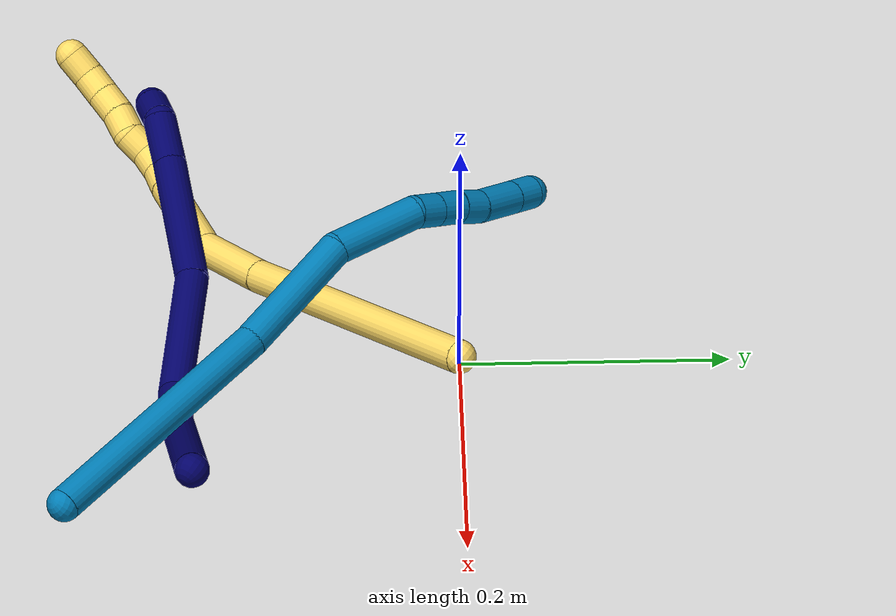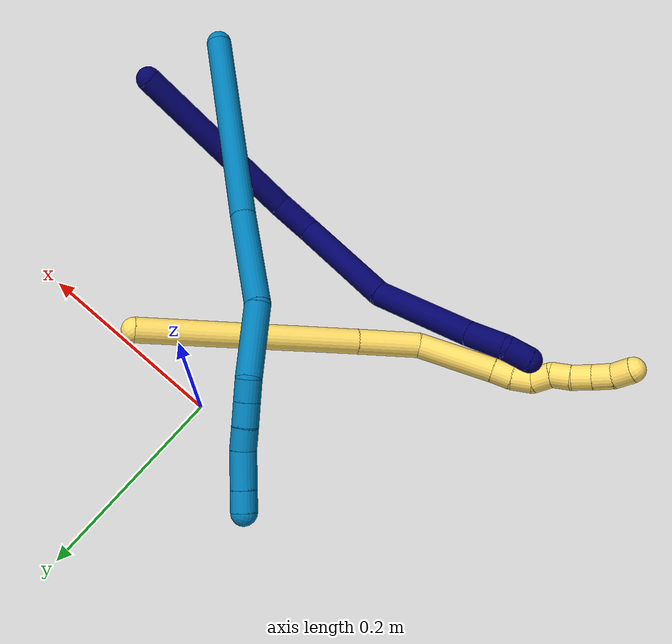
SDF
<sdf version="1.7">
 <world name="default">
  <model name="5">
   <static>0</static>
   <link name="5">
    <collision name="collision-cylinder-e_1_1_4">
     <pose>-0.077597 0.046705 -0.061848 -2.49479 -0.786013 1.78184</pose>
     <geometry><cylinder><radius>0.0125</radius><length>0.219343</length></cylinder></geometry>
     <surface>
      <friction><ode><mu>1.16</mu><mu2>1.16</mu2><slip1>0</slip1><slip2>0</slip2></ode></friction>
      <contact><ode><kp>1e+06</kp><kd>1</kd><max_vel>0</max_vel><min_depth>0.001</min_depth></ode></contact>
     </surface>
    </collision>
    <visual name="visual-cylinder-e_1_1_4">
     <pose>-0.077597 0.046705 -0.061848 -2.49479 -0.786013 1.78184</pose>
     <geometry><cylinder><radius>0.0125</radius><length>0.219343</length></cylinder></geometry>
     <material><ambient>1 0.858824 0.4 1</ambient></material>
    </visual>
    <collision name="collision-cylinder-e_2_4_5">
     <pose>-0.177267 0.104674 -0.142671 -2.6059 -0.785544 1.97148</pose>
     <geometry><cylinder><radius>0.0125</radius><length>0.062423</length></cylinder></geometry>
     <surface>
      <friction><ode><mu>1.16</mu><mu2>1.16</mu2><slip1>0</slip1><slip2>0</slip2></ode></friction>
      <contact><ode><kp>1e+06</kp><kd>1</kd><max_vel>0</max_vel><min_depth>0.001</min_depth></ode></contact>
     </surface>
    </collision>
    <visual name="visual-cylinder-e_2_4_5">
     <pose>-0.177267 0.104674 -0.142671 -2.6059 -0.785544 1.97148</pose>
     <geometry><cylinder><radius>0.0125</radius><length>0.062423</length></cylinder></geometry>
     <material><ambient>1 0.858824 0.4 1</ambient></material>
    </visual>
    <collision name="collision-cylinder-e_3_5_6">
     <pose>-0.230968 0.116403 -0.183799 -3.1206 -0.959678 3.10125</pose>
     <geometry><cylinder><radius>0.0125</radius><length>0.077233</length></cylinder></geometry>
     <surface>
      <friction><ode><mu>1.16</mu><mu2>1.16</mu2><slip1>0</slip1><slip2>0</slip2></ode></friction>
      <contact><ode><kp>1e+06</kp><kd>1</kd><max_vel>0</max_vel><min_depth>0.001</min_depth></ode></contact>
     </surface>
    </collision>
    <visual name="visual-cylinder-e_3_5_6">
     <pose>-0.230968 0.116403 -0.183799 -3.1206 -0.959678 3.10125</pose>
     <geometry><cylinder><radius>0.0125</radius><length>0.077233</length></cylinder></geometry>
     <material><ambient>1 0.858824 0.4 1</ambient></material>
    </visual>
    <collision name="collision-cylinder-e_4_6_7">
     <pose>-0.270769 0.115851 -0.211868 2.97141 -0.937306 -2.80776</pose>
     <geometry><cylinder><radius>0.0125</radius><length>0.020284</length></cylinder></geometry>
     <surface>
      <friction><ode><mu>1.16</mu><mu2>1.16</mu2><slip1>0</slip1><slip2>0</slip2></ode></friction>
      <contact><ode><kp>1e+06</kp><kd>1</kd><max_vel>0</max_vel><min_depth>0.001</min_depth></ode></contact>
     </surface>
    </collision>
    <visual name="visual-cylinder-e_4_6_7">
     <pose>-0.270769 0.115851 -0.211868 2.97141 -0.937306 -2.80776</pose>
     <geometry><cylinder><radius>0.0125</radius><length>0.020284</length></cylinder></geometry>
     <material><ambient>1 0.858824 0.4 1</ambient></material>
    </visual>
    <collision name="collision-cylinder-e_5_7_8">
     <pose>-0.285912 0.114517 -0.225229 3.09901 -0.752079 -3.03382</pose>
     <geometry><cylinder><radius>0.0125</radius><length>0.020405</length></cylinder></geometry>
     <surface>
      <friction><ode><mu>1.16</mu><mu2>1.16</mu2><slip1>0</slip1><slip2>0</slip2></ode></friction>
      <contact><ode><kp>1e+06</kp><kd>1</kd><max_vel>0</max_vel><min_depth>0.001</min_depth></ode></contact>
     </surface>
    </collision>
    <visual name="visual-cylinder-e_5_7_8">
     <pose>-0.285912 0.114517 -0.225229 3.09901 -0.752079 -3.03382</pose>
     <geometry><cylinder><radius>0.0125</radius><length>0.020405</length></cylinder></geometry>
     <material><ambient>1 0.858824 0.4 1</ambient></material>
    </visual>
    <collision name="collision-cylinder-e_6_8_9">
     <pose>-0.295287 0.114427 -0.242415 -3.11831 -0.241959 2.95065</pose>
     <geometry><cylinder><radius>0.0125</radius><length>0.020075</length></cylinder></geometry>
     <surface>
      <friction><ode><mu>1.16</mu><mu2>1.16</mu2><slip1>0</slip1><slip2>0</slip2></ode></friction>
      <contact><ode><kp>1e+06</kp><kd>1</kd><max_vel>0</max_vel><min_depth>0.001</min_depth></ode></contact>
     </surface>
    </collision>
    <visual name="visual-cylinder-e_6_8_9">
     <pose>-0.295287 0.114427 -0.242415 -3.11831 -0.241959 2.95065</pose>
     <geometry><cylinder><radius>0.0125</radius><length>0.020075</length></cylinder></geometry>
     <material><ambient>1 0.858824 0.4 1</ambient></material>
    </visual>
    <collision name="collision-cylinder-e_7_9_10">
     <pose>-0.303631 0.11287 -0.260042 2.91912 -0.633654 -2.48491</pose>
     <geometry><cylinder><radius>0.0125</radius><length>0.020061</length></cylinder></geometry>
     <surface>
      <friction><ode><mu>1.16</mu><mu2>1.16</mu2><slip1>0</slip1><slip2>0</slip2></ode></friction>
      <contact><ode><kp>1e+06</kp><kd>1</kd><max_vel>0</max_vel><min_depth>0.001</min_depth></ode></contact>
     </surface>
    </collision>
    <visual name="visual-cylinder-e_7_9_10">
     <pose>-0.303631 0.11287 -0.260042 2.91912 -0.633654 -2.48491</pose>
     <geometry><cylinder><radius>0.0125</radius><length>0.020061</length></cylinder></geometry>
     <material><ambient>1 0.858824 0.4 1</ambient></material>
    </visual>
    <collision name="collision-cylinder-e_8_10_11">
     <pose>-0.314706 0.110774 -0.27654 3.10534 -0.537321 -3.0101</pose>
     <geometry><cylinder><radius>0.0125</radius><length>0.020068</length></cylinder></geometry>
     <surface>
      <friction><ode><mu>1.16</mu><mu2>1.16</mu2><slip1>0</slip1><slip2>0</slip2></ode></friction>
      <contact><ode><kp>1e+06</kp><kd>1</kd><max_vel>0</max_vel><min_depth>0.001</min_depth></ode></contact>
     </surface>
    </collision>
    <visual name="visual-cylinder-e_8_10_11">
     <pose>-0.314706 0.110774 -0.27654 3.10534 -0.537321 -3.0101</pose>
     <geometry><cylinder><radius>0.0125</radius><length>0.020068</length></cylinder></geometry>
     <material><ambient>1 0.858824 0.4 1</ambient></material>
    </visual>
    <collision name="collision-cylinder-e_9_11_12">
     <pose>-0.32451 0.109945 -0.294017 3.08335 -0.484085 -2.90669</pose>
     <geometry><cylinder><radius>0.0125</radius><length>0.020062</length></cylinder></geometry>
     <surface>
      <friction><ode><mu>1.16</mu><mu2>1.16</mu2><slip1>0</slip1><slip2>0</slip2></ode></friction>
      <contact><ode><kp>1e+06</kp><kd>1</kd><max_vel>0</max_vel><min_depth>0.001</min_depth></ode></contact>
     </surface>
    </collision>
    <visual name="visual-cylinder-e_9_11_12">
     <pose>-0.32451 0.109945 -0.294017 3.08335 -0.484085 -2.90669</pose>
     <geometry><cylinder><radius>0.0125</radius><length>0.020062</length></cylinder></geometry>
     <material><ambient>1 0.858824 0.4 1</ambient></material>
    </visual>
    <collision name="collision-cylinder-e_10_12_2">
     <pose>-0.33099 0.108534 -0.312699 3.05076 -0.181735 -2.21623</pose>
     <geometry><cylinder><radius>0.0125</radius><length>0.020048</length></cylinder></geometry>
     <surface>
      <friction><ode><mu>1.16</mu><mu2>1.16</mu2><slip1>0</slip1><slip2>0</slip2></ode></friction>
      <contact><ode><kp>1e+06</kp><kd>1</kd><max_vel>0</max_vel><min_depth>0.001</min_depth></ode></contact>
     </surface>
    </collision>
    <visual name="visual-cylinder-e_10_12_2">
     <pose>-0.33099 0.108534 -0.312699 3.05076 -0.181735 -2.21623</pose>
     <geometry><cylinder><radius>0.0125</radius><length>0.020048</length></cylinder></geometry>
     <material><ambient>1 0.858824 0.4 1</ambient></material>
    </visual>
    <collision name="collision-sphere-2">
     <pose>-0.332802 0.10764 -0.322517 0 -0 0</pose>
     <geometry><sphere><radius>0.0125</radius></sphere></geometry>
     <surface>
      <friction><ode><mu>1.16</mu><mu2>1.16</mu2><slip1>0</slip1><slip2>0</slip2></ode></friction>
      <contact><ode><kp>1e+06</kp><kd>1</kd><max_vel>0</max_vel><min_depth>0.001</min_depth></ode></contact>
     </surface>
    </collision>
    <visual name="visual-sphere-2">
     <pose>-0.332802 0.10764 -0.322517 0 -0 0</pose>
     <geometry><sphere><radius>0.0125</radius></sphere></geometry>
     <material><ambient>1 0.858824 0.4 1</ambient></material>
    </visual>
    <collision name="collision-sphere-12">
     <pose>-0.329178 0.109428 -0.302881 0 -0 0</pose>
     <geometry><sphere><radius>0.0125</radius></sphere></geometry>
     <surface>
      <friction><ode><mu>1.16</mu><mu2>1.16</mu2><slip1>0</slip1><slip2>0</slip2></ode></friction>
      <contact><ode><kp>1e+06</kp><kd>1</kd><max_vel>0</max_vel><min_depth>0.001</min_depth></ode></contact>
     </surface>
    </collision>
    <visual name="visual-sphere-12">
     <pose>-0.329178 0.109428 -0.302881 0 -0 0</pose>
     <geometry><sphere><radius>0.0125</radius></sphere></geometry>
     <material><ambient>1 0.858824 0.4 1</ambient></material>
    </visual>
    <collision name="collision-sphere-11">
     <pose>-0.319842 0.110462 -0.285154 0 -0 0</pose>
     <geometry><sphere><radius>0.0125</radius></sphere></geometry>
     <surface>
      <friction><ode><mu>1.16</mu><mu2>1.16</mu2><slip1>0</slip1><slip2>0</slip2></ode></friction>
      <contact><ode><kp>1e+06</kp><kd>1</kd><max_vel>0</max_vel><min_depth>0.001</min_depth></ode></contact>
     </surface>
    </collision>
    <visual name="visual-sphere-11">
     <pose>-0.319842 0.110462 -0.285154 0 -0 0</pose>
     <geometry><sphere><radius>0.0125</radius></sphere></geometry>
     <material><ambient>1 0.858824 0.4 1</ambient></material>
    </visual>
    <collision name="collision-sphere-10">
     <pose>-0.30957 0.111087 -0.267926 0 -0 0</pose>
     <geometry><sphere><radius>0.0125</radius></sphere></geometry>
     <surface>
      <friction><ode><mu>1.16</mu><mu2>1.16</mu2><slip1>0</slip1><slip2>0</slip2></ode></friction>
      <contact><ode><kp>1e+06</kp><kd>1</kd><max_vel>0</max_vel><min_depth>0.001</min_depth></ode></contact>
     </surface>
    </collision>
    <visual name="visual-sphere-10">
     <pose>-0.30957 0.111087 -0.267926 0 -0 0</pose>
     <geometry><sphere><radius>0.0125</radius></sphere></geometry>
     <material><ambient>1 0.858824 0.4 1</ambient></material>
    </visual>
    <collision name="collision-sphere-9">
     <pose>-0.297692 0.114654 -0.252158 0 -0 0</pose>
     <geometry><sphere><radius>0.0125</radius></sphere></geometry>
     <surface>
      <friction><ode><mu>1.16</mu><mu2>1.16</mu2><slip1>0</slip1><slip2>0</slip2></ode></friction>
      <contact><ode><kp>1e+06</kp><kd>1</kd><max_vel>0</max_vel><min_depth>0.001</min_depth></ode></contact>
     </surface>
    </collision>
    <visual name="visual-sphere-9">
     <pose>-0.297692 0.114654 -0.252158 0 -0 0</pose>
     <geometry><sphere><radius>0.0125</radius></sphere></geometry>
     <material><ambient>1 0.858824 0.4 1</ambient></material>
    </visual>
    <collision name="collision-sphere-4">
     <pose>-0.155194 0.09341 -0.123695 0 -0 0</pose>
     <geometry><sphere><radius>0.0125</radius></sphere></geometry>
     <surface>
      <friction><ode><mu>1.16</mu><mu2>1.16</mu2><slip1>0</slip1><slip2>0</slip2></ode></friction>
      <contact><ode><kp>1e+06</kp><kd>1</kd><max_vel>0</max_vel><min_depth>0.001</min_depth></ode></contact>
     </surface>
    </collision>
    <visual name="visual-sphere-4">
     <pose>-0.155194 0.09341 -0.123695 0 -0 0</pose>
     <geometry><sphere><radius>0.0125</radius></sphere></geometry>
     <material><ambient>1 0.858824 0.4 1</ambient></material>
    </visual>
    <collision name="collision-sphere-1">
     <geometry><sphere><radius>0.0125</radius></sphere></geometry>
     <surface>
      <friction><ode><mu>1.16</mu><mu2>1.16</mu2><slip1>0</slip1><slip2>0</slip2></ode></friction>
      <contact><ode><kp>1e+06</kp><kd>1</kd><max_vel>0</max_vel><min_depth>0.001</min_depth></ode></contact>
     </surface>
    </collision>
    <visual name="visual-sphere-1">
     <geometry><sphere><radius>0.0125</radius></sphere></geometry>
     <material><ambient>1 0.858824 0.4 1</ambient></material>
    </visual>
    <collision name="collision-sphere-8">
     <pose>-0.292882 0.1142 -0.232673 0 -0 0</pose>
     <geometry><sphere><radius>0.0125</radius></sphere></geometry>
     <surface>
      <friction><ode><mu>1.16</mu><mu2>1.16</mu2><slip1>0</slip1><slip2>0</slip2></ode></friction>
      <contact><ode><kp>1e+06</kp><kd>1</kd><max_vel>0</max_vel><min_depth>0.001</min_depth></ode></contact>
     </surface>
    </collision>
    <visual name="visual-sphere-8">
     <pose>-0.292882 0.1142 -0.232673 0 -0 0</pose>
     <geometry><sphere><radius>0.0125</radius></sphere></geometry>
     <material><ambient>1 0.858824 0.4 1</ambient></material>
    </visual>
    <collision name="collision-sphere-5">
     <pose>-0.19934 0.115938 -0.161646 0 -0 0</pose>
     <geometry><sphere><radius>0.0125</radius></sphere></geometry>
     <surface>
      <friction><ode><mu>1.16</mu><mu2>1.16</mu2><slip1>0</slip1><slip2>0</slip2></ode></friction>
      <contact><ode><kp>1e+06</kp><kd>1</kd><max_vel>0</max_vel><min_depth>0.001</min_depth></ode></contact>
     </surface>
    </collision>
    <visual name="visual-sphere-5">
     <pose>-0.19934 0.115938 -0.161646 0 -0 0</pose>
     <geometry><sphere><radius>0.0125</radius></sphere></geometry>
     <material><ambient>1 0.858824 0.4 1</ambient></material>
    </visual>
    <collision name="collision-sphere-6">
     <pose>-0.262595 0.116868 -0.205952 0 -0 0</pose>
     <geometry><sphere><radius>0.0125</radius></sphere></geometry>
     <surface>
      <friction><ode><mu>1.16</mu><mu2>1.16</mu2><slip1>0</slip1><slip2>0</slip2></ode></friction>
      <contact><ode><kp>1e+06</kp><kd>1</kd><max_vel>0</max_vel><min_depth>0.001</min_depth></ode></contact>
     </surface>
    </collision>
    <visual name="visual-sphere-6">
     <pose>-0.262595 0.116868 -0.205952 0 -0 0</pose>
     <geometry><sphere><radius>0.0125</radius></sphere></geometry>
     <material><ambient>1 0.858824 0.4 1</ambient></material>
    </visual>
    <collision name="collision-sphere-7">
     <pose>-0.278943 0.114834 -0.217785 0 -0 0</pose>
     <geometry><sphere><radius>0.0125</radius></sphere></geometry>
     <surface>
      <friction><ode><mu>1.16</mu><mu2>1.16</mu2><slip1>0</slip1><slip2>0</slip2></ode></friction>
      <contact><ode><kp>1e+06</kp><kd>1</kd><max_vel>0</max_vel><min_depth>0.001</min_depth></ode></contact>
     </surface>
    </collision>
    <visual name="visual-sphere-7">
     <pose>-0.278943 0.114834 -0.217785 0 -0 0</pose>
     <geometry><sphere><radius>0.0125</radius></sphere></geometry>
     <material><ambient>1 0.858824 0.4 1</ambient></material>
    </visual>
    <inertial>
     <pose>-0.177461 0.083242 -0.146721 0 -0 0</pose>
     <mass>0.5</mass>
     <inertia>
      <ixx>0.000432</ixx>
      <ixy>0</ixy>
      <ixz>0</ixz>
      <iyy>0.00122</iyy>
      <iyz>0</iyz>
      <izz>0.000272</izz>
     </inertia>
    </inertial>
   </link>
   <pose>0.079728 -0.002621 0.07664 -2.31539 -0.446972 -0.065427</pose>
  </model>
  <model name="7">
   <static>0</static>
   <link name="7">
    <collision name="collision-cylinder-e_1_1_4">
     <pose>-0.073833 -0.026977 0.047128 0.519899 -0.93665 -0.267479</pose>
     <geometry><cylinder><radius>0.0125</radius><length>0.183305</length></cylinder></geometry>
     <surface>
      <friction><ode><mu>1.16</mu><mu2>1.16</mu2><slip1>0</slip1><slip2>0</slip2></ode></friction>
      <contact><ode><kp>1e+06</kp><kd>1</kd><max_vel>0</max_vel><min_depth>0.001</min_depth></ode></contact>
     </surface>
    </collision>
    <visual name="visual-cylinder-e_1_1_4">
     <pose>-0.073833 -0.026977 0.047128 0.519899 -0.93665 -0.267479</pose>
     <geometry><cylinder><radius>0.0125</radius><length>0.183305</length></cylinder></geometry>
     <material><ambient>0.003922 0 0.403922 1</ambient></material>
    </visual>
    <collision name="collision-cylinder-e_2_4_5">
     <pose>-0.159935 -0.06184 0.108526 0.504815 -0.645101 -0.171972</pose>
     <geometry><cylinder><radius>0.0125</radius><length>0.040807</length></cylinder></geometry>
     <surface>
      <friction><ode><mu>1.16</mu><mu2>1.16</mu2><slip1>0</slip1><slip2>0</slip2></ode></friction>
      <contact><ode><kp>1e+06</kp><kd>1</kd><max_vel>0</max_vel><min_depth>0.001</min_depth></ode></contact>
     </surface>
    </collision>
    <visual name="visual-cylinder-e_2_4_5">
     <pose>-0.159935 -0.06184 0.108526 0.504815 -0.645101 -0.171972</pose>
     <geometry><cylinder><radius>0.0125</radius><length>0.040807</length></cylinder></geometry>
     <material><ambient>0.003922 0 0.403922 1</ambient></material>
    </visual>
    <collision name="collision-cylinder-e_3_5_6">
     <pose>-0.181487 -0.09127 0.171472 0.4167 -0.172669 -0.036592</pose>
     <geometry><cylinder><radius>0.0125</radius><length>0.10807</length></cylinder></geometry>
     <surface>
      <friction><ode><mu>1.16</mu><mu2>1.16</mu2><slip1>0</slip1><slip2>0</slip2></ode></friction>
      <contact><ode><kp>1e+06</kp><kd>1</kd><max_vel>0</max_vel><min_depth>0.001</min_depth></ode></contact>
     </surface>
    </collision>
    <visual name="visual-cylinder-e_3_5_6">
     <pose>-0.181487 -0.09127 0.171472 0.4167 -0.172669 -0.036592</pose>
     <geometry><cylinder><radius>0.0125</radius><length>0.10807</length></cylinder></geometry>
     <material><ambient>0.003922 0 0.403922 1</ambient></material>
    </visual>
    <collision name="collision-cylinder-e_4_6_7">
     <pose>-0.197139 -0.145917 0.259224 0.70282 -0.123726 -0.045412</pose>
     <geometry><cylinder><radius>0.0125</radius><length>0.103213</length></cylinder></geometry>
     <surface>
      <friction><ode><mu>1.16</mu><mu2>1.16</mu2><slip1>0</slip1><slip2>0</slip2></ode></friction>
      <contact><ode><kp>1e+06</kp><kd>1</kd><max_vel>0</max_vel><min_depth>0.001</min_depth></ode></contact>
     </surface>
    </collision>
    <visual name="visual-cylinder-e_4_6_7">
     <pose>-0.197139 -0.145917 0.259224 0.70282 -0.123726 -0.045412</pose>
     <geometry><cylinder><radius>0.0125</radius><length>0.103213</length></cylinder></geometry>
     <material><ambient>0.003922 0 0.403922 1</ambient></material>
    </visual>
    <collision name="collision-cylinder-e_5_7_8">
     <pose>-0.20471 -0.192348 0.312856 0.741442 -0.060798 -0.023638</pose>
     <geometry><cylinder><radius>0.0125</radius><length>0.039545</length></cylinder></geometry>
     <surface>
      <friction><ode><mu>1.16</mu><mu2>1.16</mu2><slip1>0</slip1><slip2>0</slip2></ode></friction>
      <contact><ode><kp>1e+06</kp><kd>1</kd><max_vel>0</max_vel><min_depth>0.001</min_depth></ode></contact>
     </surface>
    </collision>
    <visual name="visual-cylinder-e_5_7_8">
     <pose>-0.20471 -0.192348 0.312856 0.741442 -0.060798 -0.023638</pose>
     <geometry><cylinder><radius>0.0125</radius><length>0.039545</length></cylinder></geometry>
     <material><ambient>0.003922 0 0.403922 1</ambient></material>
    </visual>
    <collision name="collision-cylinder-e_6_8_2">
     <pose>-0.21272 -0.213051 0.334911 0.77689 -0.574535 -0.240642</pose>
     <geometry><cylinder><radius>0.0125</radius><length>0.025059</length></cylinder></geometry>
     <surface>
      <friction><ode><mu>1.16</mu><mu2>1.16</mu2><slip1>0</slip1><slip2>0</slip2></ode></friction>
      <contact><ode><kp>1e+06</kp><kd>1</kd><max_vel>0</max_vel><min_depth>0.001</min_depth></ode></contact>
     </surface>
    </collision>
    <visual name="visual-cylinder-e_6_8_2">
     <pose>-0.21272 -0.213051 0.334911 0.77689 -0.574535 -0.240642</pose>
     <geometry><cylinder><radius>0.0125</radius><length>0.025059</length></cylinder></geometry>
     <material><ambient>0.003922 0 0.403922 1</ambient></material>
    </visual>
    <collision name="collision-sphere-2">
     <pose>-0.219529 -0.220425 0.342412 0 -0 0</pose>
     <geometry><sphere><radius>0.0125</radius></sphere></geometry>
     <surface>
      <friction><ode><mu>1.16</mu><mu2>1.16</mu2><slip1>0</slip1><slip2>0</slip2></ode></friction>
      <contact><ode><kp>1e+06</kp><kd>1</kd><max_vel>0</max_vel><min_depth>0.001</min_depth></ode></contact>
     </surface>
    </collision>
    <visual name="visual-sphere-2">
     <pose>-0.219529 -0.220425 0.342412 0 -0 0</pose>
     <geometry><sphere><radius>0.0125</radius></sphere></geometry>
     <material><ambient>0.003922 0 0.403922 1</ambient></material>
    </visual>
    <collision name="collision-sphere-4">
     <pose>-0.147666 -0.053955 0.094256 0 -0 0</pose>
     <geometry><sphere><radius>0.0125</radius></sphere></geometry>
     <surface>
      <friction><ode><mu>1.16</mu><mu2>1.16</mu2><slip1>0</slip1><slip2>0</slip2></ode></friction>
      <contact><ode><kp>1e+06</kp><kd>1</kd><max_vel>0</max_vel><min_depth>0.001</min_depth></ode></contact>
     </surface>
    </collision>
    <visual name="visual-sphere-4">
     <pose>-0.147666 -0.053955 0.094256 0 -0 0</pose>
     <geometry><sphere><radius>0.0125</radius></sphere></geometry>
     <material><ambient>0.003922 0 0.403922 1</ambient></material>
    </visual>
    <collision name="collision-sphere-1">
     <geometry><sphere><radius>0.0125</radius></sphere></geometry>
     <surface>
      <friction><ode><mu>1.16</mu><mu2>1.16</mu2><slip1>0</slip1><slip2>0</slip2></ode></friction>
      <contact><ode><kp>1e+06</kp><kd>1</kd><max_vel>0</max_vel><min_depth>0.001</min_depth></ode></contact>
     </surface>
    </collision>
    <visual name="visual-sphere-1">
     <geometry><sphere><radius>0.0125</radius></sphere></geometry>
     <material><ambient>0.003922 0 0.403922 1</ambient></material>
    </visual>
    <collision name="collision-sphere-8">
     <pose>-0.205911 -0.205677 0.327411 0 -0 0</pose>
     <geometry><sphere><radius>0.0125</radius></sphere></geometry>
     <surface>
      <friction><ode><mu>1.16</mu><mu2>1.16</mu2><slip1>0</slip1><slip2>0</slip2></ode></friction>
      <contact><ode><kp>1e+06</kp><kd>1</kd><max_vel>0</max_vel><min_depth>0.001</min_depth></ode></contact>
     </surface>
    </collision>
    <visual name="visual-sphere-8">
     <pose>-0.205911 -0.205677 0.327411 0 -0 0</pose>
     <geometry><sphere><radius>0.0125</radius></sphere></geometry>
     <material><ambient>0.003922 0 0.403922 1</ambient></material>
    </visual>
    <collision name="collision-sphere-5">
     <pose>-0.172203 -0.069725 0.122796 0 -0 0</pose>
     <geometry><sphere><radius>0.0125</radius></sphere></geometry>
     <surface>
      <friction><ode><mu>1.16</mu><mu2>1.16</mu2><slip1>0</slip1><slip2>0</slip2></ode></friction>
      <contact><ode><kp>1e+06</kp><kd>1</kd><max_vel>0</max_vel><min_depth>0.001</min_depth></ode></contact>
     </surface>
    </collision>
    <visual name="visual-sphere-5">
     <pose>-0.172203 -0.069725 0.122796 0 -0 0</pose>
     <geometry><sphere><radius>0.0125</radius></sphere></geometry>
     <material><ambient>0.003922 0 0.403922 1</ambient></material>
    </visual>
    <collision name="collision-sphere-6">
     <pose>-0.190771 -0.112815 0.220148 0 -0 0</pose>
     <geometry><sphere><radius>0.0125</radius></sphere></geometry>
     <surface>
      <friction><ode><mu>1.16</mu><mu2>1.16</mu2><slip1>0</slip1><slip2>0</slip2></ode></friction>
      <contact><ode><kp>1e+06</kp><kd>1</kd><max_vel>0</max_vel><min_depth>0.001</min_depth></ode></contact>
     </surface>
    </collision>
    <visual name="visual-sphere-6">
     <pose>-0.190771 -0.112815 0.220148 0 -0 0</pose>
     <geometry><sphere><radius>0.0125</radius></sphere></geometry>
     <material><ambient>0.003922 0 0.403922 1</ambient></material>
    </visual>
    <collision name="collision-sphere-7">
     <pose>-0.203508 -0.179019 0.2983 0 -0 0</pose>
     <geometry><sphere><radius>0.0125</radius></sphere></geometry>
     <surface>
      <friction><ode><mu>1.16</mu><mu2>1.16</mu2><slip1>0</slip1><slip2>0</slip2></ode></friction>
      <contact><ode><kp>1e+06</kp><kd>1</kd><max_vel>0</max_vel><min_depth>0.001</min_depth></ode></contact>
     </surface>
    </collision>
    <visual name="visual-sphere-7">
     <pose>-0.203508 -0.179019 0.2983 0 -0 0</pose>
     <geometry><sphere><radius>0.0125</radius></sphere></geometry>
     <material><ambient>0.003922 0 0.403922 1</ambient></material>
    </visual>
    <inertial>
     <pose>-0.146894 -0.090676 0.158237 0 -0 0</pose>
     <mass>0.5</mass>
     <inertia>
      <ixx>0.000406</ixx>
      <ixy>0</ixy>
      <ixz>0</ixz>
      <iyy>0.000569</iyy>
      <iyz>0</iyz>
      <izz>0.000749</izz>
     </inertia>
    </inertial>
   </link>
   <pose>0.238925 -0.194676 0.114383 -0.840121 -1.15208 0.304809</pose>
  </model>
  <model name="9">
   <static>0</static>
   <link name="9">
    <collision name="collision-cylinder-e_1_1_4">
     <pose>-0.059991 0.059526 -0.058231 -2.3452 -0.624303 1.30873</pose>
     <geometry><cylinder><radius>0.0125</radius><length>0.205261</length></cylinder></geometry>
     <surface>
      <friction><ode><mu>1.16</mu><mu2>1.16</mu2><slip1>0</slip1><slip2>0</slip2></ode></friction>
      <contact><ode><kp>1e+06</kp><kd>1</kd><max_vel>0</max_vel><min_depth>0.001</min_depth></ode></contact>
     </surface>
    </collision>
    <visual name="visual-cylinder-e_1_1_4">
     <pose>-0.059991 0.059526 -0.058231 -2.3452 -0.624303 1.30873</pose>
     <geometry><cylinder><radius>0.0125</radius><length>0.205261</length></cylinder></geometry>
     <material><ambient>0 0.490196 0.709804 1</ambient></material>
    </visual>
    <collision name="collision-cylinder-e_2_4_5">
     <pose>-0.150169 0.152826 -0.139542 -2.17025 -0.635742 1.11482</pose>
     <geometry><cylinder><radius>0.0125</radius><length>0.10168</length></cylinder></geometry>
     <surface>
      <friction><ode><mu>1.16</mu><mu2>1.16</mu2><slip1>0</slip1><slip2>0</slip2></ode></friction>
      <contact><ode><kp>1e+06</kp><kd>1</kd><max_vel>0</max_vel><min_depth>0.001</min_depth></ode></contact>
     </surface>
    </collision>
    <visual name="visual-cylinder-e_2_4_5">
     <pose>-0.150169 0.152826 -0.139542 -2.17025 -0.635742 1.11482</pose>
     <geometry><cylinder><radius>0.0125</radius><length>0.10168</length></cylinder></geometry>
     <material><ambient>0 0.490196 0.709804 1</ambient></material>
    </visual>
    <collision name="collision-cylinder-e_3_5_6">
     <pose>-0.193543 0.208046 -0.188069 -2.44136 -0.377255 0.963399</pose>
     <geometry><cylinder><radius>0.0125</radius><length>0.07159</length></cylinder></geometry>
     <surface>
      <friction><ode><mu>1.16</mu><mu2>1.16</mu2><slip1>0</slip1><slip2>0</slip2></ode></friction>
      <contact><ode><kp>1e+06</kp><kd>1</kd><max_vel>0</max_vel><min_depth>0.001</min_depth></ode></contact>
     </surface>
    </collision>
    <visual name="visual-cylinder-e_3_5_6">
     <pose>-0.193543 0.208046 -0.188069 -2.44136 -0.377255 0.963399</pose>
     <geometry><cylinder><radius>0.0125</radius><length>0.07159</length></cylinder></geometry>
     <material><ambient>0 0.490196 0.709804 1</ambient></material>
    </visual>
    <collision name="collision-cylinder-e_4_6_7">
     <pose>-0.210345 0.232625 -0.222883 -2.81865 -0.350958 1.65547</pose>
     <geometry><cylinder><radius>0.0125</radius><length>0.021038</length></cylinder></geometry>
     <surface>
      <friction><ode><mu>1.16</mu><mu2>1.16</mu2><slip1>0</slip1><slip2>0</slip2></ode></friction>
      <contact><ode><kp>1e+06</kp><kd>1</kd><max_vel>0</max_vel><min_depth>0.001</min_depth></ode></contact>
     </surface>
    </collision>
    <visual name="visual-cylinder-e_4_6_7">
     <pose>-0.210345 0.232625 -0.222883 -2.81865 -0.350958 1.65547</pose>
     <geometry><cylinder><radius>0.0125</radius><length>0.021038</length></cylinder></geometry>
     <material><ambient>0 0.490196 0.709804 1</ambient></material>
    </visual>
    <collision name="collision-cylinder-e_5_7_8">
     <pose>-0.21791 0.2392 -0.242276 -2.81105 -0.356625 1.64818</pose>
     <geometry><cylinder><radius>0.0125</radius><length>0.022623</length></cylinder></geometry>
     <surface>
      <friction><ode><mu>1.16</mu><mu2>1.16</mu2><slip1>0</slip1><slip2>0</slip2></ode></friction>
      <contact><ode><kp>1e+06</kp><kd>1</kd><max_vel>0</max_vel><min_depth>0.001</min_depth></ode></contact>
     </surface>
    </collision>
    <visual name="visual-cylinder-e_5_7_8">
     <pose>-0.21791 0.2392 -0.242276 -2.81105 -0.356625 1.64818</pose>
     <geometry><cylinder><radius>0.0125</radius><length>0.022623</length></cylinder></geometry>
     <material><ambient>0 0.490196 0.709804 1</ambient></material>
    </visual>
    <collision name="collision-cylinder-e_6_8_9">
     <pose>-0.225222 0.245169 -0.262164 -2.89058 -0.319009 1.81142</pose>
     <geometry><cylinder><radius>0.0125</radius><length>0.021444</length></cylinder></geometry>
     <surface>
      <friction><ode><mu>1.16</mu><mu2>1.16</mu2><slip1>0</slip1><slip2>0</slip2></ode></friction>
      <contact><ode><kp>1e+06</kp><kd>1</kd><max_vel>0</max_vel><min_depth>0.001</min_depth></ode></contact>
     </surface>
    </collision>
    <visual name="visual-cylinder-e_6_8_9">
     <pose>-0.225222 0.245169 -0.262164 -2.89058 -0.319009 1.81142</pose>
     <geometry><cylinder><radius>0.0125</radius><length>0.021444</length></cylinder></geometry>
     <material><ambient>0 0.490196 0.709804 1</ambient></material>
    </visual>
    <collision name="collision-cylinder-e_7_9_10">
     <pose>-0.236579 0.253598 -0.286969 -2.76552 -0.461736 1.78055</pose>
     <geometry><cylinder><radius>0.0125</radius><length>0.035889</length></cylinder></geometry>
     <surface>
      <friction><ode><mu>1.16</mu><mu2>1.16</mu2><slip1>0</slip1><slip2>0</slip2></ode></friction>
      <contact><ode><kp>1e+06</kp><kd>1</kd><max_vel>0</max_vel><min_depth>0.001</min_depth></ode></contact>
     </surface>
    </collision>
    <visual name="visual-cylinder-e_7_9_10">
     <pose>-0.236579 0.253598 -0.286969 -2.76552 -0.461736 1.78055</pose>
     <geometry><cylinder><radius>0.0125</radius><length>0.035889</length></cylinder></geometry>
     <material><ambient>0 0.490196 0.709804 1</ambient></material>
    </visual>
    <collision name="collision-cylinder-e_8_10_2">
     <pose>-0.249096 0.262975 -0.310412 -2.7534 -0.457554 1.73937</pose>
     <geometry><cylinder><radius>0.0125</radius><length>0.020474</length></cylinder></geometry>
     <surface>
      <friction><ode><mu>1.16</mu><mu2>1.16</mu2><slip1>0</slip1><slip2>0</slip2></ode></friction>
      <contact><ode><kp>1e+06</kp><kd>1</kd><max_vel>0</max_vel><min_depth>0.001</min_depth></ode></contact>
     </surface>
    </collision>
    <visual name="visual-cylinder-e_8_10_2">
     <pose>-0.249096 0.262975 -0.310412 -2.7534 -0.457554 1.73937</pose>
     <geometry><cylinder><radius>0.0125</radius><length>0.020474</length></cylinder></geometry>
     <material><ambient>0 0.490196 0.709804 1</ambient></material>
    </visual>
    <collision name="collision-sphere-2">
     <pose>-0.253618 0.266451 -0.318913 0 -0 0</pose>
     <geometry><sphere><radius>0.0125</radius></sphere></geometry>
     <surface>
      <friction><ode><mu>1.16</mu><mu2>1.16</mu2><slip1>0</slip1><slip2>0</slip2></ode></friction>
      <contact><ode><kp>1e+06</kp><kd>1</kd><max_vel>0</max_vel><min_depth>0.001</min_depth></ode></contact>
     </surface>
    </collision>
    <visual name="visual-sphere-2">
     <pose>-0.253618 0.266451 -0.318913 0 -0 0</pose>
     <geometry><sphere><radius>0.0125</radius></sphere></geometry>
     <material><ambient>0 0.490196 0.709804 1</ambient></material>
    </visual>
    <collision name="collision-sphere-10">
     <pose>-0.244574 0.259498 -0.301912 0 -0 0</pose>
     <geometry><sphere><radius>0.0125</radius></sphere></geometry>
     <surface>
      <friction><ode><mu>1.16</mu><mu2>1.16</mu2><slip1>0</slip1><slip2>0</slip2></ode></friction>
      <contact><ode><kp>1e+06</kp><kd>1</kd><max_vel>0</max_vel><min_depth>0.001</min_depth></ode></contact>
     </surface>
    </collision>
    <visual name="visual-sphere-10">
     <pose>-0.244574 0.259498 -0.301912 0 -0 0</pose>
     <geometry><sphere><radius>0.0125</radius></sphere></geometry>
     <material><ambient>0 0.490196 0.709804 1</ambient></material>
    </visual>
    <collision name="collision-sphere-9">
     <pose>-0.228585 0.247698 -0.272026 0 -0 0</pose>
     <geometry><sphere><radius>0.0125</radius></sphere></geometry>
     <surface>
      <friction><ode><mu>1.16</mu><mu2>1.16</mu2><slip1>0</slip1><slip2>0</slip2></ode></friction>
      <contact><ode><kp>1e+06</kp><kd>1</kd><max_vel>0</max_vel><min_depth>0.001</min_depth></ode></contact>
     </surface>
    </collision>
    <visual name="visual-sphere-9">
     <pose>-0.228585 0.247698 -0.272026 0 -0 0</pose>
     <geometry><sphere><radius>0.0125</radius></sphere></geometry>
     <material><ambient>0 0.490196 0.709804 1</ambient></material>
    </visual>
    <collision name="collision-sphere-4">
     <pose>-0.119982 0.119051 -0.116462 0 -0 0</pose>
     <geometry><sphere><radius>0.0125</radius></sphere></geometry>
     <surface>
      <friction><ode><mu>1.16</mu><mu2>1.16</mu2><slip1>0</slip1><slip2>0</slip2></ode></friction>
      <contact><ode><kp>1e+06</kp><kd>1</kd><max_vel>0</max_vel><min_depth>0.001</min_depth></ode></contact>
     </surface>
    </collision>
    <visual name="visual-sphere-4">
     <pose>-0.119982 0.119051 -0.116462 0 -0 0</pose>
     <geometry><sphere><radius>0.0125</radius></sphere></geometry>
     <material><ambient>0 0.490196 0.709804 1</ambient></material>
    </visual>
    <collision name="collision-sphere-1">
     <geometry><sphere><radius>0.0125</radius></sphere></geometry>
     <surface>
      <friction><ode><mu>1.16</mu><mu2>1.16</mu2><slip1>0</slip1><slip2>0</slip2></ode></friction>
      <contact><ode><kp>1e+06</kp><kd>1</kd><max_vel>0</max_vel><min_depth>0.001</min_depth></ode></contact>
     </surface>
    </collision>
    <visual name="visual-sphere-1">
     <geometry><sphere><radius>0.0125</radius></sphere></geometry>
     <material><ambient>0 0.490196 0.709804 1</ambient></material>
    </visual>
    <collision name="collision-sphere-8">
     <pose>-0.221859 0.24264 -0.252302 0 -0 0</pose>
     <geometry><sphere><radius>0.0125</radius></sphere></geometry>
     <surface>
      <friction><ode><mu>1.16</mu><mu2>1.16</mu2><slip1>0</slip1><slip2>0</slip2></ode></friction>
      <contact><ode><kp>1e+06</kp><kd>1</kd><max_vel>0</max_vel><min_depth>0.001</min_depth></ode></contact>
     </surface>
    </collision>
    <visual name="visual-sphere-8">
     <pose>-0.221859 0.24264 -0.252302 0 -0 0</pose>
     <geometry><sphere><radius>0.0125</radius></sphere></geometry>
     <material><ambient>0 0.490196 0.709804 1</ambient></material>
    </visual>
    <collision name="collision-sphere-5">
     <pose>-0.180357 0.186601 -0.162621 0 -0 0</pose>
     <geometry><sphere><radius>0.0125</radius></sphere></geometry>
     <surface>
      <friction><ode><mu>1.16</mu><mu2>1.16</mu2><slip1>0</slip1><slip2>0</slip2></ode></friction>
      <contact><ode><kp>1e+06</kp><kd>1</kd><max_vel>0</max_vel><min_depth>0.001</min_depth></ode></contact>
     </surface>
    </collision>
    <visual name="visual-sphere-5">
     <pose>-0.180357 0.186601 -0.162621 0 -0 0</pose>
     <geometry><sphere><radius>0.0125</radius></sphere></geometry>
     <material><ambient>0 0.490196 0.709804 1</ambient></material>
    </visual>
    <collision name="collision-sphere-6">
     <pose>-0.206729 0.22949 -0.213516 0 -0 0</pose>
     <geometry><sphere><radius>0.0125</radius></sphere></geometry>
     <surface>
      <friction><ode><mu>1.16</mu><mu2>1.16</mu2><slip1>0</slip1><slip2>0</slip2></ode></friction>
      <contact><ode><kp>1e+06</kp><kd>1</kd><max_vel>0</max_vel><min_depth>0.001</min_depth></ode></contact>
     </surface>
    </collision>
    <visual name="visual-sphere-6">
     <pose>-0.206729 0.22949 -0.213516 0 -0 0</pose>
     <geometry><sphere><radius>0.0125</radius></sphere></geometry>
     <material><ambient>0 0.490196 0.709804 1</ambient></material>
    </visual>
    <collision name="collision-sphere-7">
     <pose>-0.213961 0.235759 -0.23225 0 -0 0</pose>
     <geometry><sphere><radius>0.0125</radius></sphere></geometry>
     <surface>
      <friction><ode><mu>1.16</mu><mu2>1.16</mu2><slip1>0</slip1><slip2>0</slip2></ode></friction>
      <contact><ode><kp>1e+06</kp><kd>1</kd><max_vel>0</max_vel><min_depth>0.001</min_depth></ode></contact>
     </surface>
    </collision>
    <visual name="visual-sphere-7">
     <pose>-0.213961 0.235759 -0.23225 0 -0 0</pose>
     <geometry><sphere><radius>0.0125</radius></sphere></geometry>
     <material><ambient>0 0.490196 0.709804 1</ambient></material>
    </visual>
    <inertial>
     <pose>-0.138428 0.1454 -0.144103 0 -0 0</pose>
     <mass>0.5</mass>
     <inertia>
      <ixx>0.000855</ixx>
      <ixy>0</ixy>
      <ixz>0</ixz>
      <iyy>0.000869</iyy>
      <iyz>0</iyz>
      <izz>-3.5e-05</izz>
     </inertia>
    </inertial>
   </link>
   <pose>0.232173 -0.2853 0.077876 0.836328 0.027025 0.244141</pose>
  </model>
 </world>
</sdf>
